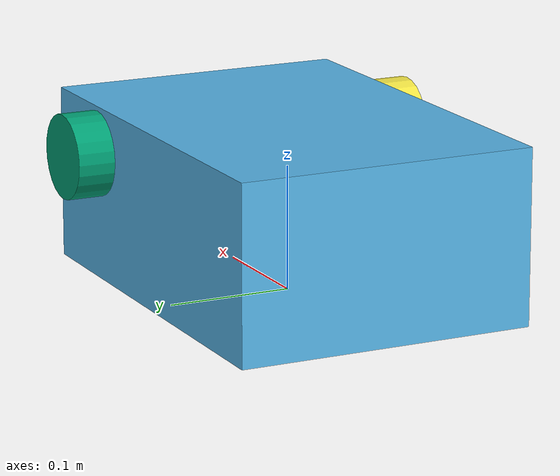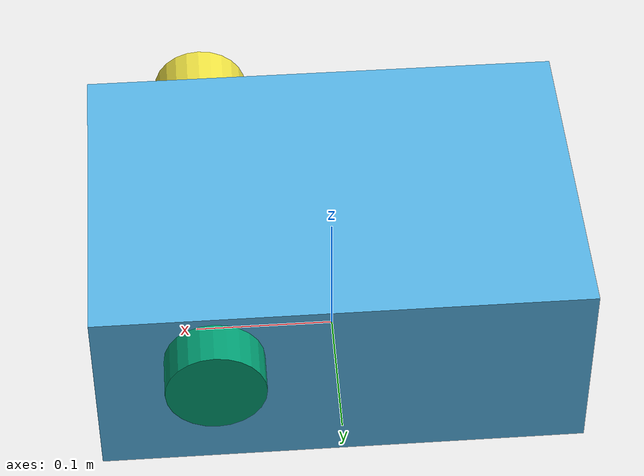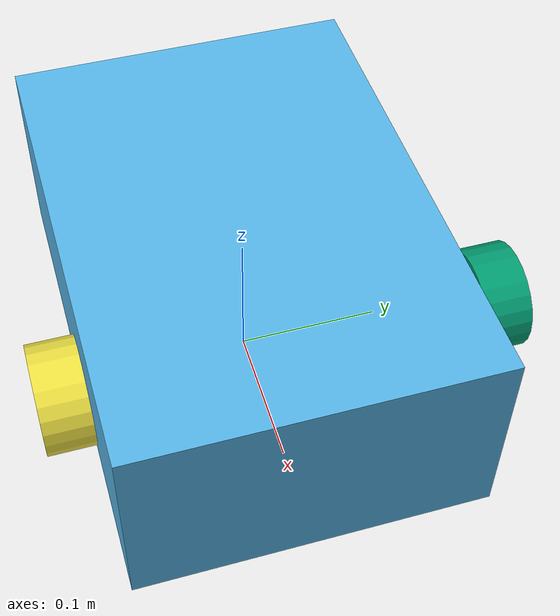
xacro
<?xml version="1.0"?>
<robot xmlns:xacro="http://www.ros.org/wiki/xacro" name="franky_bot">

  <!-- =========================
       Arguments (editable)
       ========================= -->
  <xacro:arg name="base_length"        default="0.34"/>
  <xacro:arg name="base_width"         default="0.24"/>
  <xacro:arg name="base_height"        default="0.14"/>

  <xacro:arg name="wheel_radius"       default="0.034"/>
  <xacro:arg name="wheel_width"        default="0.030"/>
  <xacro:arg name="wheel_separation"   default="0.275"/>

  <!-- Distances from edges -->
  <xacro:arg name="d_front_wheel"      default="0.082"/>
  <xacro:arg name="d_rear_caster"      default="0.065"/>

  <xacro:arg name="caster_radius"      default="0.015"/>

  <!-- =========================
       Derived properties
       ========================= -->
  <xacro:property name="L" value="$(arg base_length)"/>
  <xacro:property name="W" value="$(arg base_width)"/>
  <xacro:property name="H" value="$(arg base_height)"/>

  <xacro:property name="r_wheel" value="$(arg wheel_radius)"/>
  <xacro:property name="w_wheel" value="$(arg wheel_width)"/>
  <xacro:property name="b"       value="$(arg wheel_separation)"/>

  <!-- Half-dimensions -->
  <xacro:property name="L2" value="${L/2.0}"/>
  <xacro:property name="W2" value="${W/2.0}"/>

  <!-- Computed positions -->
  <!-- wheel axle position from center: x = L/2 - d_front_wheel -->
  <xacro:property name="x_wheel" value="${L2 - float($(arg d_front_wheel))}"/>
  <!-- caster position from center: x = -(L/2 - d_rear_caster) -->
  <xacro:property name="x_caster" value="${-(L2 - float($(arg d_rear_caster)))}"/>

  <xacro:property name="y_left"  value="${ b/2.0}"/>
  <xacro:property name="y_right" value="${-b/2.0}"/>

  <xacro:property name="z_base"   value="${H/2.0}"/>
  <xacro:property name="z_wheel"  value="${r_wheel}"/>
  <xacro:property name="z_caster" value="${float($(arg caster_radius))}"/>

  <!-- =========================
       base_footprint (ground frame)
       ========================= -->
  <link name="base_footprint"/>

  <joint name="base_footprint_to_base_link" type="fixed">
    <parent link="base_footprint"/>
    <child link="base_link"/>
    <!-- base_link centered, lifted by half base height -->
    <origin xyz="0 0 ${z_base}" rpy="0 0 0"/>
  </joint>

  <!-- =========================
       base_link (main body)
       ========================= -->
  <link name="base_link">
    <visual>
      <origin xyz="0 0 0" rpy="0 0 0"/>
      <geometry>
        <box size="${L} ${W} ${H}"/>
      </geometry>
    </visual>
    <collision>
      <origin xyz="0 0 0" rpy="0 0 0"/>
      <geometry>
        <box size="${L} ${W} ${H}"/>
      </geometry>
    </collision>

    <!-- Inertial: placeholder (tune later if you care about Gazebo physics) -->
    <inertial>
      <origin xyz="0 0 0" rpy="0 0 0"/>
      <mass value="2.0"/>
      <!-- rough inertia; replace with real values if needed -->
      <inertia ixx="0.02" ixy="0.0" ixz="0.0"
               iyy="0.03" iyz="0.0"
               izz="0.04"/>
    </inertial>
  </link>

  <!-- =========================
       Wheel macro
       ========================= -->
  <xacro:macro name="wheel_link" params="name">
    <link name="${name}">
      <visual>
        <!-- Cylinder axis is Z in URDF; rotate so it looks like a wheel (axis along Y) -->
        <origin xyz="0 0 0" rpy="1.57079632679 0 0"/>
        <geometry>
          <cylinder radius="${r_wheel}" length="${w_wheel}"/>
        </geometry>
      </visual>
      <collision>
        <origin xyz="0 0 0" rpy="1.57079632679 0 0"/>
        <geometry>
          <cylinder radius="${r_wheel}" length="${w_wheel}"/>
        </geometry>
      </collision>
      <inertial>
        <origin xyz="0 0 0" rpy="0 0 0"/>
        <mass value="0.2"/>
        <inertia ixx="0.0002" ixy="0.0" ixz="0.0"
                 iyy="0.0002" iyz="0.0"
                 izz="0.0002"/>
      </inertial>
    </link>
  </xacro:macro>

  <!-- Left wheel -->
  <xacro:wheel_link name="left_wheel_link"/>
  <joint name="left_wheel_joint" type="continuous">
    <parent link="base_link"/>
    <child link="left_wheel_link"/>
    <origin xyz="${x_wheel} ${y_left} ${z_wheel}" rpy="0 0 0"/>
    <!-- Wheel rotates around Y (left-right axis) -->
    <axis xyz="0 1 0"/>
  </joint>

  <!-- Right wheel -->
  <xacro:wheel_link name="right_wheel_link"/>
  <joint name="right_wheel_joint" type="continuous">
    <parent link="base_link"/>
    <child link="right_wheel_link"/>
    <origin xyz="${x_wheel} ${y_right} ${z_wheel}" rpy="0 0 0"/>
    <axis xyz="0 1 0"/>
  </joint>

  <!-- =========================
       Caster (simple visual)
       ========================= -->
  <link name="caster_link">
    <visual>
      <origin xyz="0 0 0" rpy="0 0 0"/>
      <geometry>
        <!-- Represent caster as sphere (good enough for RViz) -->
        <sphere radius="$(arg caster_radius)"/>
      </geometry>
    </visual>
    <collision>
      <origin xyz="0 0 0" rpy="0 0 0"/>
      <geometry>
        <sphere radius="$(arg caster_radius)"/>
      </geometry>
    </collision>
    <inertial>
      <origin xyz="0 0 0" rpy="0 0 0"/>
      <mass value="0.1"/>
      <inertia ixx="0.00005" ixy="0.0" ixz="0.0"
               iyy="0.00005" iyz="0.0"
               izz="0.00005"/>
    </inertial>
  </link>

  <joint name="caster_joint" type="fixed">
    <parent link="base_link"/>
    <child link="caster_link"/>
    <origin xyz="${x_caster} 0 ${z_caster}" rpy="0 0 0"/>
  </joint>

</robot>
